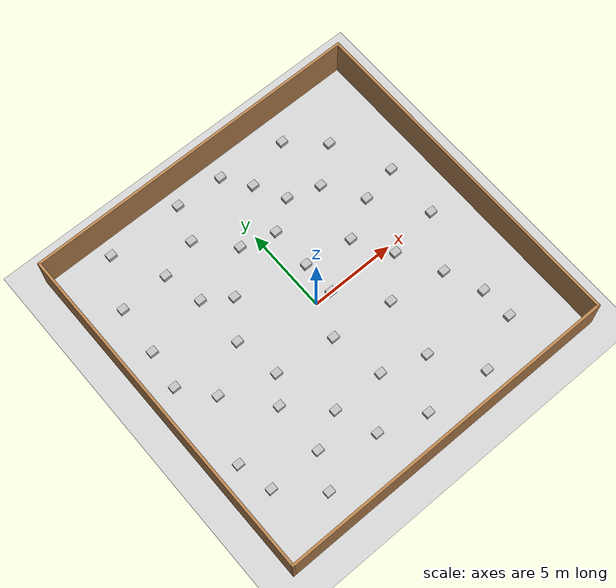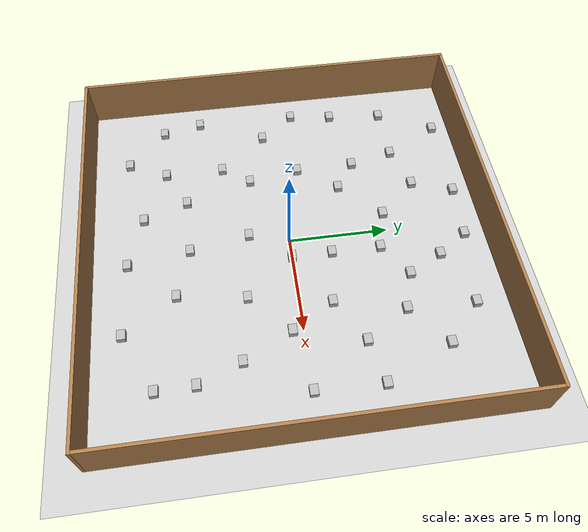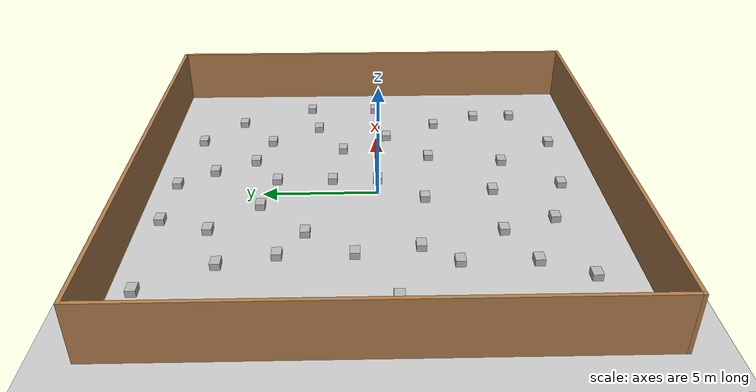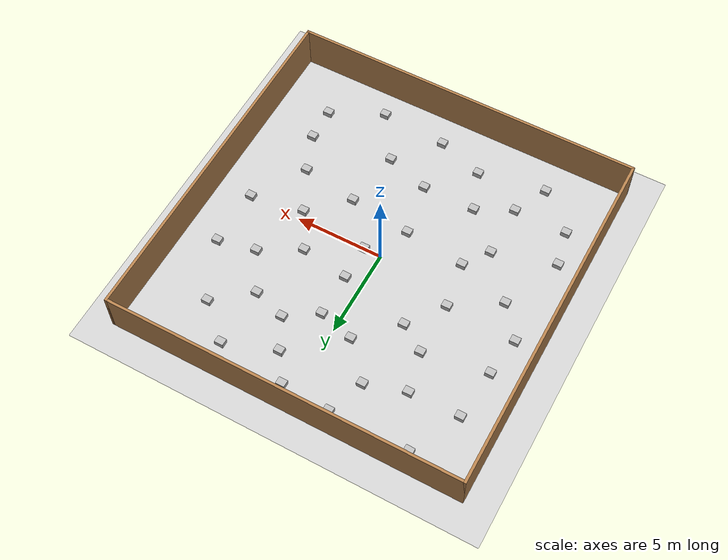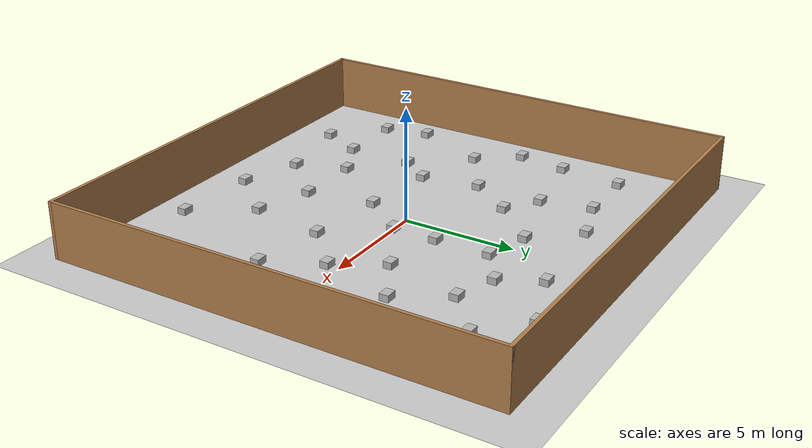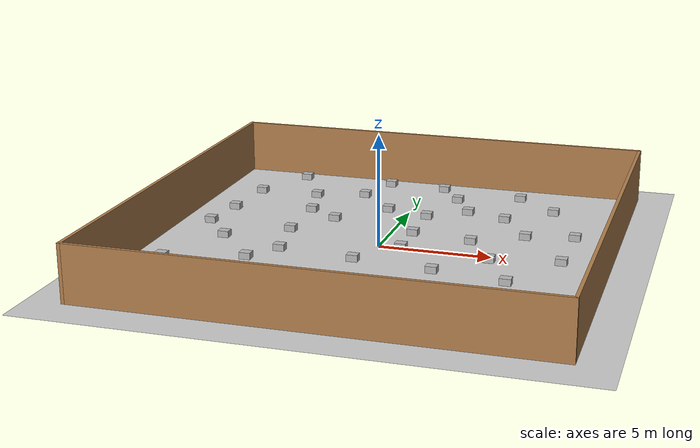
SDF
<sdf version="1.6">
 <world name="default">
  <light name="sun" type="directional">
   <pose>100 0 10 0 -0 0</pose>
   <diffuse>0.8 0.8 0.8 1</diffuse>
   <specular>0.2 0.2 0.2 1</specular>
   <attenuation>
    <range>1000</range>
    <constant>0.9</constant>
    <linear>0.01</linear>
    <quadratic>0.001</quadratic>
   </attenuation>
   <direction>-0.5 0.1 -0.9</direction>
  </light>
  <model name="ground_plane">
   <static>1</static>
   <link name="link">
    <collision name="collision">
     <geometry><plane><normal>0 0 1</normal><size>100 100</size></plane></geometry>
     <surface>
      <contact><collide_bitmask>65535</collide_bitmask></contact>
      <friction><ode><mu>100</mu><mu2>50</mu2></ode></friction>
     </surface>
    </collision>
    <visual name="visual">
     <cast_shadows>0</cast_shadows>
     <geometry><plane><normal>0 0 1</normal><size>100 100</size></plane></geometry>
     <material>
      <script><uri>file://media/materials/scripts/gazebo.material</uri><name>Gazebo/Grey</name></script>
     </material>
    </visual>
   </link>
  </model>
  <gravity>0 0 -9.8</gravity>
  <magnetic_field>6e-06 2.3e-05 -4.2e-05</magnetic_field>
  <atmosphere type="adiabatic"/>
  <physics name="default_physics" default="0" type="ode">
   <max_step_size>0.001</max_step_size>
   <real_time_factor>1</real_time_factor>
   <real_time_update_rate>2000</real_time_update_rate>
  </physics>
  <scene><ambient>0.4 0.4 0.4 1</ambient><background>0.7 0.7 0.7 1</background><shadows>1</shadows></scene>
  <audio><device>default</device></audio>
  <spherical_coordinates>
   <surface_model>EARTH_WGS84</surface_model>
   <latitude_deg>0</latitude_deg>
   <longitude_deg>0</longitude_deg>
   <elevation>0</elevation>
   <heading_deg>0</heading_deg>
  </spherical_coordinates>
  <model name="space">
   <pose>0.101286 0.054802 0 0 -0 0</pose>
   <link name="Wall_0">
    <collision name="Wall_0_Collision">
     <geometry><box><size>20 0.15 2.5</size></box></geometry>
     <pose>0 0 1.25 0 -0 0</pose>
    </collision>
    <visual name="Wall_0_Visual">
     <pose>0 0 1.25 0 -0 0</pose>
     <geometry><box><size>20 0.15 2.5</size></box></geometry>
     <material>
      <script><uri>file://media/materials/scripts/gazebo.material</uri><name>Gazebo/Wood</name></script>
      <ambient>1 1 1 1</ambient>
     </material>
     <meta><layer>0</layer></meta>
    </visual>
    <pose>0 -9.925 0 0 -0 3.14159</pose>
   </link>
   <link name="Wall_2">
    <collision name="Wall_2_Collision">
     <geometry><box><size>20 0.15 2.5</size></box></geometry>
     <pose>0 0 1.25 0 -0 0</pose>
    </collision>
    <visual name="Wall_2_Visual">
     <pose>0 0 1.25 0 -0 0</pose>
     <geometry><box><size>20 0.15 2.5</size></box></geometry>
     <material>
      <script><uri>file://media/materials/scripts/gazebo.material</uri><name>Gazebo/Wood</name></script>
      <ambient>1 1 1 1</ambient>
     </material>
     <meta><layer>0</layer></meta>
    </visual>
    <pose>-9.925 -0 0 0 -0 1.5708</pose>
   </link>
   <link name="Wall_4">
    <collision name="Wall_4_Collision">
     <geometry><box><size>20 0.15 2.5</size></box></geometry>
     <pose>0 0 1.25 0 -0 0</pose>
    </collision>
    <visual name="Wall_4_Visual">
     <pose>0 0 1.25 0 -0 0</pose>
     <geometry><box><size>20 0.15 2.5</size></box></geometry>
     <material>
      <script><uri>file://media/materials/scripts/gazebo.material</uri><name>Gazebo/Wood</name></script>
      <ambient>1 1 1 1</ambient>
     </material>
     <meta><layer>0</layer></meta>
    </visual>
    <pose>0 9.925 0 0 -0 0</pose>
   </link>
   <link name="Wall_6">
    <collision name="Wall_6_Collision">
     <geometry><box><size>20 0.15 2.5</size></box></geometry>
     <pose>0 0 1.25 0 -0 0</pose>
    </collision>
    <visual name="Wall_6_Visual">
     <pose>0 0 1.25 0 -0 0</pose>
     <geometry><box><size>20 0.15 2.5</size></box></geometry>
     <material>
      <script><uri>file://media/materials/scripts/gazebo.material</uri><name>Gazebo/Wood</name></script>
      <ambient>1 1 1 1</ambient>
     </material>
     <meta><layer>0</layer></meta>
    </visual>
    <pose>9.925 -0 0 0 -0 -1.5708</pose>
   </link>
   <static>1</static>
  </model>
  <model name="cardboard_box">
   <pose>7.11242 -6.95784 0.149 0 -0 0</pose>
   <link name="link">
    <inertial>
     <mass>2</mass>
     <inertia>
      <ixx>0.0416667</ixx>
      <ixy>0</ixy>
      <ixz>0</ixz>
      <iyy>0.0566667</iyy>
      <iyz>0</iyz>
      <izz>0.0683333</izz>
     </inertia>
    </inertial>
    <collision name="collision">
     <geometry><box><size>0.5 0.4 0.3</size></box></geometry>
     <surface>
      <friction><ode><mu>1</mu><mu2>1</mu2></ode></friction>
      <contact><ode><kp>1e+07</kp><kd>1</kd><min_depth>0.001</min_depth><max_vel>0.1</max_vel></ode></contact>
     </surface>
    </collision>
    <visual name="visual">
     <pose>0 0 -0.15 0 -0 0</pose>
     <geometry>
      <mesh><uri>model://cardboard_box/meshes/cardboard_box.dae</uri><scale>1.25932 1.00745 0.755591</scale></mesh>
     </geometry>
    </visual>
   </link>
  </model>
  <model name="cardboard_box_clone">
   <pose>7.06206 -5.07993 0.149 0 -0 0</pose>
   <link name="link">
    <inertial>
     <mass>2</mass>
     <inertia>
      <ixx>0.0416667</ixx>
      <ixy>0</ixy>
      <ixz>0</ixz>
      <iyy>0.0566667</iyy>
      <iyz>0</iyz>
      <izz>0.0683333</izz>
     </inertia>
    </inertial>
    <collision name="collision">
     <geometry><box><size>0.5 0.4 0.3</size></box></geometry>
     <surface>
      <friction><ode><mu>1</mu><mu2>1</mu2></ode></friction>
      <contact><ode><kp>1e+07</kp><kd>1</kd><min_depth>0.001</min_depth><max_vel>0.1</max_vel></ode></contact>
     </surface>
    </collision>
    <visual name="visual">
     <pose>0 0 -0.15 0 -0 0</pose>
     <geometry>
      <mesh><uri>model://cardboard_box/meshes/cardboard_box.dae</uri><scale>1.25932 1.00745 0.755591</scale></mesh>
     </geometry>
    </visual>
   </link>
  </model>
  <model name="cardboard_box_clone_0">
   <pose>3 -2.41867 0.149 0 -0 0</pose>
   <link name="link">
    <inertial>
     <mass>2</mass>
     <inertia>
      <ixx>0.0416667</ixx>
      <ixy>0</ixy>
      <ixz>0</ixz>
      <iyy>0.0566667</iyy>
      <iyz>0</iyz>
      <izz>0.0683333</izz>
     </inertia>
    </inertial>
    <collision name="collision">
     <geometry><box><size>0.5 0.4 0.3</size></box></geometry>
     <surface>
      <friction><ode><mu>1</mu><mu2>1</mu2></ode></friction>
      <contact><ode><kp>1e+07</kp><kd>1</kd><min_depth>0.001</min_depth><max_vel>0.1</max_vel></ode></contact>
     </surface>
    </collision>
    <visual name="visual">
     <pose>0 0 -0.15 0 -0 0</pose>
     <geometry>
      <mesh><uri>model://cardboard_box/meshes/cardboard_box.dae</uri><scale>1.25932 1.00745 0.755591</scale></mesh>
     </geometry>
    </visual>
   </link>
  </model>
  <model name="cardboard_box_clone_1">
   <pose>3.73661 1.58001 0.149 0 -0 0</pose>
   <link name="link">
    <inertial>
     <mass>2</mass>
     <inertia>
      <ixx>0.0416667</ixx>
      <ixy>0</ixy>
      <ixz>0</ixz>
      <iyy>0.0566667</iyy>
      <iyz>0</iyz>
      <izz>0.0683333</izz>
     </inertia>
    </inertial>
    <collision name="collision">
     <geometry><box><size>0.5 0.4 0.3</size></box></geometry>
     <surface>
      <friction><ode><mu>1</mu><mu2>1</mu2></ode></friction>
      <contact><ode><kp>1e+07</kp><kd>1</kd><min_depth>0.001</min_depth><max_vel>0.1</max_vel></ode></contact>
     </surface>
    </collision>
    <visual name="visual">
     <pose>0 0 -0.15 0 -0 0</pose>
     <geometry>
      <mesh><uri>model://cardboard_box/meshes/cardboard_box.dae</uri><scale>1.25932 1.00745 0.755591</scale></mesh>
     </geometry>
    </visual>
   </link>
  </model>
  <model name="cardboard_box_clone_2">
   <pose>-4 -1.59365 0.149 0 -0 0</pose>
   <link name="link">
    <inertial>
     <mass>2</mass>
     <inertia>
      <ixx>0.0416667</ixx>
      <ixy>0</ixy>
      <ixz>0</ixz>
      <iyy>0.0566667</iyy>
      <iyz>0</iyz>
      <izz>0.0683333</izz>
     </inertia>
    </inertial>
    <collision name="collision">
     <geometry><box><size>0.5 0.4 0.3</size></box></geometry>
     <surface>
      <friction><ode><mu>1</mu><mu2>1</mu2></ode></friction>
      <contact><ode><kp>1e+07</kp><kd>1</kd><min_depth>0.001</min_depth><max_vel>0.1</max_vel></ode></contact>
     </surface>
    </collision>
    <visual name="visual">
     <pose>0 0 -0.15 0 -0 0</pose>
     <geometry>
      <mesh><uri>model://cardboard_box/meshes/cardboard_box.dae</uri><scale>1.25932 1.00745 0.755591</scale></mesh>
     </geometry>
    </visual>
   </link>
  </model>
  <model name="cardboard_box_clone_3">
   <pose>-4.43461 1 0.149 0 -0 0</pose>
   <link name="link">
    <inertial>
     <mass>2</mass>
     <inertia>
      <ixx>0.0416667</ixx>
      <ixy>0</ixy>
      <ixz>0</ixz>
      <iyy>0.0566667</iyy>
      <iyz>0</iyz>
      <izz>0.0683333</izz>
     </inertia>
    </inertial>
    <collision name="collision">
     <geometry><box><size>0.5 0.4 0.3</size></box></geometry>
     <surface>
      <friction><ode><mu>1</mu><mu2>1</mu2></ode></friction>
      <contact><ode><kp>1e+07</kp><kd>1</kd><min_depth>0.001</min_depth><max_vel>0.1</max_vel></ode></contact>
     </surface>
    </collision>
    <visual name="visual">
     <pose>0 0 -0.15 0 -0 0</pose>
     <geometry>
      <mesh><uri>model://cardboard_box/meshes/cardboard_box.dae</uri><scale>1.25932 1.00745 0.755591</scale></mesh>
     </geometry>
    </visual>
   </link>
  </model>
  <model name="cardboard_box_clone_4">
   <pose>-4.46357 4 0.149 0 -0 0</pose>
   <link name="link">
    <inertial>
     <mass>2</mass>
     <inertia>
      <ixx>0.0416667</ixx>
      <ixy>0</ixy>
      <ixz>0</ixz>
      <iyy>0.0566667</iyy>
      <iyz>0</iyz>
      <izz>0.0683333</izz>
     </inertia>
    </inertial>
    <collision name="collision">
     <geometry><box><size>0.5 0.4 0.3</size></box></geometry>
     <surface>
      <friction><ode><mu>1</mu><mu2>1</mu2></ode></friction>
      <contact><ode><kp>1e+07</kp><kd>1</kd><min_depth>0.001</min_depth><max_vel>0.1</max_vel></ode></contact>
     </surface>
    </collision>
    <visual name="visual">
     <pose>0 0 -0.15 0 -0 0</pose>
     <geometry>
      <mesh><uri>model://cardboard_box/meshes/cardboard_box.dae</uri><scale>1.25932 1.00745 0.755591</scale></mesh>
     </geometry>
    </visual>
   </link>
  </model>
  <model name="cardboard_box_clone_5">
   <pose>4.561 5 0.149 0 -0 0</pose>
   <link name="link">
    <inertial>
     <mass>2</mass>
     <inertia>
      <ixx>0.0416667</ixx>
      <ixy>0</ixy>
      <ixz>0</ixz>
      <iyy>0.0566667</iyy>
      <iyz>0</iyz>
      <izz>0.0683333</izz>
     </inertia>
    </inertial>
    <collision name="collision">
     <geometry><box><size>0.5 0.4 0.3</size></box></geometry>
     <surface>
      <friction><ode><mu>1</mu><mu2>1</mu2></ode></friction>
      <contact><ode><kp>1e+07</kp><kd>1</kd><min_depth>0.001</min_depth><max_vel>0.1</max_vel></ode></contact>
     </surface>
    </collision>
    <visual name="visual">
     <pose>0 0 -0.15 0 -0 0</pose>
     <geometry>
      <mesh><uri>model://cardboard_box/meshes/cardboard_box.dae</uri><scale>1.25932 1.00745 0.755591</scale></mesh>
     </geometry>
    </visual>
   </link>
  </model>
  <model name="cardboard_box_clone_6">
   <pose>-3 3 0.149 0 -0 0</pose>
   <link name="link">
    <inertial>
     <mass>2</mass>
     <inertia>
      <ixx>0.0416667</ixx>
      <ixy>0</ixy>
      <ixz>0</ixz>
      <iyy>0.0566667</iyy>
      <iyz>0</iyz>
      <izz>0.0683333</izz>
     </inertia>
    </inertial>
    <collision name="collision">
     <geometry><box><size>0.5 0.4 0.3</size></box></geometry>
     <surface>
      <friction><ode><mu>1</mu><mu2>1</mu2></ode></friction>
      <contact><ode><kp>1e+07</kp><kd>1</kd><min_depth>0.001</min_depth><max_vel>0.1</max_vel></ode></contact>
     </surface>
    </collision>
    <visual name="visual">
     <pose>0 0 -0.15 0 -0 0</pose>
     <geometry>
      <mesh><uri>model://cardboard_box/meshes/cardboard_box.dae</uri><scale>1.25932 1.00745 0.755591</scale></mesh>
     </geometry>
    </visual>
   </link>
  </model>
  <model name="cardboard_box_clone_7">
   <pose>1 4.45869 0.149 0 -0 0</pose>
   <link name="link">
    <inertial>
     <mass>2</mass>
     <inertia>
      <ixx>0.0416667</ixx>
      <ixy>0</ixy>
      <ixz>0</ixz>
      <iyy>0.0566667</iyy>
      <iyz>0</iyz>
      <izz>0.0683333</izz>
     </inertia>
    </inertial>
    <collision name="collision">
     <geometry><box><size>0.5 0.4 0.3</size></box></geometry>
     <surface>
      <friction><ode><mu>1</mu><mu2>1</mu2></ode></friction>
      <contact><ode><kp>1e+07</kp><kd>1</kd><min_depth>0.001</min_depth><max_vel>0.1</max_vel></ode></contact>
     </surface>
    </collision>
    <visual name="visual">
     <pose>0 0 -0.15 0 -0 0</pose>
     <geometry>
      <mesh><uri>model://cardboard_box/meshes/cardboard_box.dae</uri><scale>1.25932 1.00745 0.755591</scale></mesh>
     </geometry>
    </visual>
   </link>
  </model>
  <model name="cardboard_box_clone_8">
   <pose>1 2 0.149 0 -0 0</pose>
   <link name="link">
    <inertial>
     <mass>2</mass>
     <inertia>
      <ixx>0.0416667</ixx>
      <ixy>0</ixy>
      <ixz>0</ixz>
      <iyy>0.0566667</iyy>
      <iyz>0</iyz>
      <izz>0.0683333</izz>
     </inertia>
    </inertial>
    <collision name="collision">
     <geometry><box><size>0.5 0.4 0.3</size></box></geometry>
     <surface>
      <friction><ode><mu>1</mu><mu2>1</mu2></ode></friction>
      <contact><ode><kp>1e+07</kp><kd>1</kd><min_depth>0.001</min_depth><max_vel>0.1</max_vel></ode></contact>
     </surface>
    </collision>
    <visual name="visual">
     <pose>0 0 -0.15 0 -0 0</pose>
     <geometry>
      <mesh><uri>model://cardboard_box/meshes/cardboard_box.dae</uri><scale>1.25932 1.00745 0.755591</scale></mesh>
     </geometry>
    </visual>
   </link>
  </model>
  <model name="cardboard_box_clone_9">
   <pose>-0.550715 -2 0.149 0 -0 0</pose>
   <link name="link">
    <inertial>
     <mass>2</mass>
     <inertia>
      <ixx>0.0416667</ixx>
      <ixy>0</ixy>
      <ixz>0</ixz>
      <iyy>0.0566667</iyy>
      <iyz>0</iyz>
      <izz>0.0683333</izz>
     </inertia>
    </inertial>
    <collision name="collision">
     <geometry><box><size>0.5 0.4 0.3</size></box></geometry>
     <surface>
      <friction><ode><mu>1</mu><mu2>1</mu2></ode></friction>
      <contact><ode><kp>1e+07</kp><kd>1</kd><min_depth>0.001</min_depth><max_vel>0.1</max_vel></ode></contact>
     </surface>
    </collision>
    <visual name="visual">
     <pose>0 0 -0.15 0 -0 0</pose>
     <geometry>
      <mesh><uri>model://cardboard_box/meshes/cardboard_box.dae</uri><scale>1.25932 1.00745 0.755591</scale></mesh>
     </geometry>
    </visual>
   </link>
  </model>
  <model name="cardboard_box_clone_10">
   <pose>-5 -3 0.149 0 -0 0</pose>
   <link name="link">
    <inertial>
     <mass>2</mass>
     <inertia>
      <ixx>0.0416667</ixx>
      <ixy>0</ixy>
      <ixz>0</ixz>
      <iyy>0.0566667</iyy>
      <iyz>0</iyz>
      <izz>0.0683333</izz>
     </inertia>
    </inertial>
    <collision name="collision">
     <geometry><box><size>0.5 0.4 0.3</size></box></geometry>
     <surface>
      <friction><ode><mu>1</mu><mu2>1</mu2></ode></friction>
      <contact><ode><kp>1e+07</kp><kd>1</kd><min_depth>0.001</min_depth><max_vel>0.1</max_vel></ode></contact>
     </surface>
    </collision>
    <visual name="visual">
     <pose>0 0 -0.15 0 -0 0</pose>
     <geometry>
      <mesh><uri>model://cardboard_box/meshes/cardboard_box.dae</uri><scale>1.25932 1.00745 0.755591</scale></mesh>
     </geometry>
    </visual>
   </link>
  </model>
  <model name="cardboard_box_clone_11">
   <pose>-5 -6 0.149 0 -0 0</pose>
   <link name="link">
    <inertial>
     <mass>2</mass>
     <inertia>
      <ixx>0.0416667</ixx>
      <ixy>0</ixy>
      <ixz>0</ixz>
      <iyy>0.0566667</iyy>
      <iyz>0</iyz>
      <izz>0.0683333</izz>
     </inertia>
    </inertial>
    <collision name="collision">
     <geometry><box><size>0.5 0.4 0.3</size></box></geometry>
     <surface>
      <friction><ode><mu>1</mu><mu2>1</mu2></ode></friction>
      <contact><ode><kp>1e+07</kp><kd>1</kd><min_depth>0.001</min_depth><max_vel>0.1</max_vel></ode></contact>
     </surface>
    </collision>
    <visual name="visual">
     <pose>0 0 -0.15 0 -0 0</pose>
     <geometry>
      <mesh><uri>model://cardboard_box/meshes/cardboard_box.dae</uri><scale>1.25932 1.00745 0.755591</scale></mesh>
     </geometry>
    </visual>
   </link>
  </model>
  <model name="cardboard_box_clone_12">
   <pose>0 -5 0.149 0 -0 0</pose>
   <link name="link">
    <inertial>
     <mass>2</mass>
     <inertia>
      <ixx>0.0416667</ixx>
      <ixy>0</ixy>
      <ixz>0</ixz>
      <iyy>0.0566667</iyy>
      <iyz>0</iyz>
      <izz>0.0683333</izz>
     </inertia>
    </inertial>
    <collision name="collision">
     <geometry><box><size>0.5 0.4 0.3</size></box></geometry>
     <surface>
      <friction><ode><mu>1</mu><mu2>1</mu2></ode></friction>
      <contact><ode><kp>1e+07</kp><kd>1</kd><min_depth>0.001</min_depth><max_vel>0.1</max_vel></ode></contact>
     </surface>
    </collision>
    <visual name="visual">
     <pose>0 0 -0.15 0 -0 0</pose>
     <geometry>
      <mesh><uri>model://cardboard_box/meshes/cardboard_box.dae</uri><scale>1.25932 1.00745 0.755591</scale></mesh>
     </geometry>
    </visual>
   </link>
  </model>
  <model name="cardboard_box_clone_13">
   <pose>-3 -5 0.149 0 -0 0</pose>
   <link name="link">
    <inertial>
     <mass>2</mass>
     <inertia>
      <ixx>0.0416667</ixx>
      <ixy>0</ixy>
      <ixz>0</ixz>
      <iyy>0.0566667</iyy>
      <iyz>0</iyz>
      <izz>0.0683333</izz>
     </inertia>
    </inertial>
    <collision name="collision">
     <geometry><box><size>0.5 0.4 0.3</size></box></geometry>
     <surface>
      <friction><ode><mu>1</mu><mu2>1</mu2></ode></friction>
      <contact><ode><kp>1e+07</kp><kd>1</kd><min_depth>0.001</min_depth><max_vel>0.1</max_vel></ode></contact>
     </surface>
    </collision>
    <visual name="visual">
     <pose>0 0 -0.15 0 -0 0</pose>
     <geometry>
      <mesh><uri>model://cardboard_box/meshes/cardboard_box.dae</uri><scale>1.25932 1.00745 0.755591</scale></mesh>
     </geometry>
    </visual>
   </link>
  </model>
  <model name="cardboard_box_clone_14">
   <pose>-7 -0.598873 0.149 0 -0 0</pose>
   <link name="link">
    <inertial>
     <mass>2</mass>
     <inertia>
      <ixx>0.0416667</ixx>
      <ixy>0</ixy>
      <ixz>0</ixz>
      <iyy>0.0566667</iyy>
      <iyz>0</iyz>
      <izz>0.0683333</izz>
     </inertia>
    </inertial>
    <collision name="collision">
     <geometry><box><size>0.5 0.4 0.3</size></box></geometry>
     <surface>
      <friction><ode><mu>1</mu><mu2>1</mu2></ode></friction>
      <contact><ode><kp>1e+07</kp><kd>1</kd><min_depth>0.001</min_depth><max_vel>0.1</max_vel></ode></contact>
     </surface>
    </collision>
    <visual name="visual">
     <pose>0 0 -0.15 0 -0 0</pose>
     <geometry>
      <mesh><uri>model://cardboard_box/meshes/cardboard_box.dae</uri><scale>1.25932 1.00745 0.755591</scale></mesh>
     </geometry>
    </visual>
   </link>
  </model>
  <model name="cardboard_box_clone_15">
   <pose>-8.44165 -4 0.149 0 -0 0</pose>
   <link name="link">
    <inertial>
     <mass>2</mass>
     <inertia>
      <ixx>0.0416667</ixx>
      <ixy>0</ixy>
      <ixz>0</ixz>
      <iyy>0.0566667</iyy>
      <iyz>0</iyz>
      <izz>0.0683333</izz>
     </inertia>
    </inertial>
    <collision name="collision">
     <geometry><box><size>0.5 0.4 0.3</size></box></geometry>
     <surface>
      <friction><ode><mu>1</mu><mu2>1</mu2></ode></friction>
      <contact><ode><kp>1e+07</kp><kd>1</kd><min_depth>0.001</min_depth><max_vel>0.1</max_vel></ode></contact>
     </surface>
    </collision>
    <visual name="visual">
     <pose>0 0 -0.15 0 -0 0</pose>
     <geometry>
      <mesh><uri>model://cardboard_box/meshes/cardboard_box.dae</uri><scale>1.25932 1.00745 0.755591</scale></mesh>
     </geometry>
    </visual>
   </link>
  </model>
  <model name="cardboard_box_clone_16">
   <pose>-8 -6 0.149 0 -0 0</pose>
   <link name="link">
    <inertial>
     <mass>2</mass>
     <inertia>
      <ixx>0.0416667</ixx>
      <ixy>0</ixy>
      <ixz>0</ixz>
      <iyy>0.0566667</iyy>
      <iyz>0</iyz>
      <izz>0.0683333</izz>
     </inertia>
    </inertial>
    <collision name="collision">
     <geometry><box><size>0.5 0.4 0.3</size></box></geometry>
     <surface>
      <friction><ode><mu>1</mu><mu2>1</mu2></ode></friction>
      <contact><ode><kp>1e+07</kp><kd>1</kd><min_depth>0.001</min_depth><max_vel>0.1</max_vel></ode></contact>
     </surface>
    </collision>
    <visual name="visual">
     <pose>0 0 -0.15 0 -0 0</pose>
     <geometry>
      <mesh><uri>model://cardboard_box/meshes/cardboard_box.dae</uri><scale>1.25932 1.00745 0.755591</scale></mesh>
     </geometry>
    </visual>
   </link>
  </model>
  <model name="cardboard_box_clone_17">
   <pose>8 0 0.149 0 -0 0</pose>
   <link name="link">
    <inertial>
     <mass>2</mass>
     <inertia>
      <ixx>0.0416667</ixx>
      <ixy>0</ixy>
      <ixz>0</ixz>
      <iyy>0.0566667</iyy>
      <iyz>0</iyz>
      <izz>0.0683333</izz>
     </inertia>
    </inertial>
    <collision name="collision">
     <geometry><box><size>0.5 0.4 0.3</size></box></geometry>
     <surface>
      <friction><ode><mu>1</mu><mu2>1</mu2></ode></friction>
      <contact><ode><kp>1e+07</kp><kd>1</kd><min_depth>0.001</min_depth><max_vel>0.1</max_vel></ode></contact>
     </surface>
    </collision>
    <visual name="visual">
     <pose>0 0 -0.15 0 -0 0</pose>
     <geometry>
      <mesh><uri>model://cardboard_box/meshes/cardboard_box.dae</uri><scale>1.25932 1.00745 0.755591</scale></mesh>
     </geometry>
    </visual>
   </link>
  </model>
  <model name="cardboard_box_clone_18">
   <pose>8.07233 3.26964 0.149 0 -0 0</pose>
   <link name="link">
    <inertial>
     <mass>2</mass>
     <inertia>
      <ixx>0.0416667</ixx>
      <ixy>0</ixy>
      <ixz>0</ixz>
      <iyy>0.0566667</iyy>
      <iyz>0</iyz>
      <izz>0.0683333</izz>
     </inertia>
    </inertial>
    <collision name="collision">
     <geometry><box><size>0.5 0.4 0.3</size></box></geometry>
     <surface>
      <friction><ode><mu>1</mu><mu2>1</mu2></ode></friction>
      <contact><ode><kp>1e+07</kp><kd>1</kd><min_depth>0.001</min_depth><max_vel>0.1</max_vel></ode></contact>
     </surface>
    </collision>
    <visual name="visual">
     <pose>0 0 -0.15 0 -0 0</pose>
     <geometry>
      <mesh><uri>model://cardboard_box/meshes/cardboard_box.dae</uri><scale>1.25932 1.00745 0.755591</scale></mesh>
     </geometry>
    </visual>
   </link>
  </model>
  <model name="cardboard_box_clone_19">
   <pose>5 -0.51973 0.149 0 -0 0</pose>
   <link name="link">
    <inertial>
     <mass>2</mass>
     <inertia>
      <ixx>0.0416667</ixx>
      <ixy>0</ixy>
      <ixz>0</ixz>
      <iyy>0.0566667</iyy>
      <iyz>0</iyz>
      <izz>0.0683333</izz>
     </inertia>
    </inertial>
    <collision name="collision">
     <geometry><box><size>0.5 0.4 0.3</size></box></geometry>
     <surface>
      <friction><ode><mu>1</mu><mu2>1</mu2></ode></friction>
      <contact><ode><kp>1e+07</kp><kd>1</kd><min_depth>0.001</min_depth><max_vel>0.1</max_vel></ode></contact>
     </surface>
    </collision>
    <visual name="visual">
     <pose>0 0 -0.15 0 -0 0</pose>
     <geometry>
      <mesh><uri>model://cardboard_box/meshes/cardboard_box.dae</uri><scale>1.25932 1.00745 0.755591</scale></mesh>
     </geometry>
    </visual>
   </link>
  </model>
  <model name="cardboard_box_clone_20">
   <pose>1 0 0.149 0 -0 0</pose>
   <link name="link">
    <inertial>
     <mass>2</mass>
     <inertia>
      <ixx>0.0416667</ixx>
      <ixy>0</ixy>
      <ixz>0</ixz>
      <iyy>0.0566667</iyy>
      <iyz>0</iyz>
      <izz>0.0683333</izz>
     </inertia>
    </inertial>
    <collision name="collision">
     <geometry><box><size>0.5 0.4 0.3</size></box></geometry>
     <surface>
      <friction><ode><mu>1</mu><mu2>1</mu2></ode></friction>
      <contact><ode><kp>1e+07</kp><kd>1</kd><min_depth>0.001</min_depth><max_vel>0.1</max_vel></ode></contact>
     </surface>
    </collision>
    <visual name="visual">
     <pose>0 0 -0.15 0 -0 0</pose>
     <geometry>
      <mesh><uri>model://cardboard_box/meshes/cardboard_box.dae</uri><scale>1.25932 1.00745 0.755591</scale></mesh>
     </geometry>
    </visual>
   </link>
  </model>
  <model name="cardboard_box_clone_21">
   <pose>-1 5 0.149 0 -0 0</pose>
   <link name="link">
    <inertial>
     <mass>2</mass>
     <inertia>
      <ixx>0.0416667</ixx>
      <ixy>0</ixy>
      <ixz>0</ixz>
      <iyy>0.0566667</iyy>
      <iyz>0</iyz>
      <izz>0.0683333</izz>
     </inertia>
    </inertial>
    <collision name="collision">
     <geometry><box><size>0.5 0.4 0.3</size></box></geometry>
     <surface>
      <friction><ode><mu>1</mu><mu2>1</mu2></ode></friction>
      <contact><ode><kp>1e+07</kp><kd>1</kd><min_depth>0.001</min_depth><max_vel>0.1</max_vel></ode></contact>
     </surface>
    </collision>
    <visual name="visual">
     <pose>0 0 -0.15 0 -0 0</pose>
     <geometry>
      <mesh><uri>model://cardboard_box/meshes/cardboard_box.dae</uri><scale>1.25932 1.00745 0.755591</scale></mesh>
     </geometry>
    </visual>
   </link>
  </model>
  <model name="cardboard_box_clone_22">
   <pose>-8.08219 3.38181 0.149 0 -0 0</pose>
   <link name="link">
    <inertial>
     <mass>2</mass>
     <inertia>
      <ixx>0.0416667</ixx>
      <ixy>0</ixy>
      <ixz>0</ixz>
      <iyy>0.0566667</iyy>
      <iyz>0</iyz>
      <izz>0.0683333</izz>
     </inertia>
    </inertial>
    <collision name="collision">
     <geometry><box><size>0.5 0.4 0.3</size></box></geometry>
     <surface>
      <friction><ode><mu>1</mu><mu2>1</mu2></ode></friction>
      <contact><ode><kp>1e+07</kp><kd>1</kd><min_depth>0.001</min_depth><max_vel>0.1</max_vel></ode></contact>
     </surface>
    </collision>
    <visual name="visual">
     <pose>0 0 -0.15 0 -0 0</pose>
     <geometry>
      <mesh><uri>model://cardboard_box/meshes/cardboard_box.dae</uri><scale>1.25932 1.00745 0.755591</scale></mesh>
     </geometry>
    </visual>
   </link>
  </model>
  <model name="cardboard_box_clone_23">
   <pose>-7.81227 6.18665 0.149 0 -0 0</pose>
   <link name="link">
    <inertial>
     <mass>2</mass>
     <inertia>
      <ixx>0.0416667</ixx>
      <ixy>0</ixy>
      <ixz>0</ixz>
      <iyy>0.0566667</iyy>
      <iyz>0</iyz>
      <izz>0.0683333</izz>
     </inertia>
    </inertial>
    <collision name="collision">
     <geometry><box><size>0.5 0.4 0.3</size></box></geometry>
     <surface>
      <friction><ode><mu>1</mu><mu2>1</mu2></ode></friction>
      <contact><ode><kp>1e+07</kp><kd>1</kd><min_depth>0.001</min_depth><max_vel>0.1</max_vel></ode></contact>
     </surface>
    </collision>
    <visual name="visual">
     <pose>0 0 -0.15 0 -0 0</pose>
     <geometry>
      <mesh><uri>model://cardboard_box/meshes/cardboard_box.dae</uri><scale>1.25932 1.00745 0.755591</scale></mesh>
     </geometry>
    </visual>
   </link>
  </model>
  <model name="cardboard_box_clone_24">
   <pose>1.80361 7.33195 0.149 0 -0 0</pose>
   <link name="link">
    <inertial>
     <mass>2</mass>
     <inertia>
      <ixx>0.0416667</ixx>
      <ixy>0</ixy>
      <ixz>0</ixz>
      <iyy>0.0566667</iyy>
      <iyz>0</iyz>
      <izz>0.0683333</izz>
     </inertia>
    </inertial>
    <collision name="collision">
     <geometry><box><size>0.5 0.4 0.3</size></box></geometry>
     <surface>
      <friction><ode><mu>1</mu><mu2>1</mu2></ode></friction>
      <contact><ode><kp>1e+07</kp><kd>1</kd><min_depth>0.001</min_depth><max_vel>0.1</max_vel></ode></contact>
     </surface>
    </collision>
    <visual name="visual">
     <pose>0 0 -0.15 0 -0 0</pose>
     <geometry>
      <mesh><uri>model://cardboard_box/meshes/cardboard_box.dae</uri><scale>1.25932 1.00745 0.755591</scale></mesh>
     </geometry>
    </visual>
   </link>
  </model>
  <model name="cardboard_box_clone_25">
   <pose>-4.97768 6.24623 0.149 0 -0 0</pose>
   <link name="link">
    <inertial>
     <mass>2</mass>
     <inertia>
      <ixx>0.0416667</ixx>
      <ixy>0</ixy>
      <ixz>0</ixz>
      <iyy>0.0566667</iyy>
      <iyz>0</iyz>
      <izz>0.0683333</izz>
     </inertia>
    </inertial>
    <collision name="collision">
     <geometry><box><size>0.5 0.4 0.3</size></box></geometry>
     <surface>
      <friction><ode><mu>1</mu><mu2>1</mu2></ode></friction>
      <contact><ode><kp>1e+07</kp><kd>1</kd><min_depth>0.001</min_depth><max_vel>0.1</max_vel></ode></contact>
     </surface>
    </collision>
    <visual name="visual">
     <pose>0 0 -0.15 0 -0 0</pose>
     <geometry>
      <mesh><uri>model://cardboard_box/meshes/cardboard_box.dae</uri><scale>1.25932 1.00745 0.755591</scale></mesh>
     </geometry>
    </visual>
   </link>
  </model>
  <model name="cardboard_box_clone_26">
   <pose>-2 9 0.149 0 -0 0</pose>
   <link name="link">
    <inertial>
     <mass>2</mass>
     <inertia>
      <ixx>0.0416667</ixx>
      <ixy>0</ixy>
      <ixz>0</ixz>
      <iyy>0.0566667</iyy>
      <iyz>0</iyz>
      <izz>0.0683333</izz>
     </inertia>
    </inertial>
    <collision name="collision">
     <geometry><box><size>0.5 0.4 0.3</size></box></geometry>
     <surface>
      <friction><ode><mu>1</mu><mu2>1</mu2></ode></friction>
      <contact><ode><kp>1e+07</kp><kd>1</kd><min_depth>0.001</min_depth><max_vel>0.1</max_vel></ode></contact>
     </surface>
    </collision>
    <visual name="visual">
     <pose>0 0 -0.15 0 -0 0</pose>
     <geometry>
      <mesh><uri>model://cardboard_box/meshes/cardboard_box.dae</uri><scale>1.25932 1.00745 0.755591</scale></mesh>
     </geometry>
    </visual>
   </link>
  </model>
  <model name="cardboard_box_clone_27">
   <pose>-2.74208 6.92671 0.149 0 -0 0</pose>
   <link name="link">
    <inertial>
     <mass>2</mass>
     <inertia>
      <ixx>0.0416667</ixx>
      <ixy>0</ixy>
      <ixz>0</ixz>
      <iyy>0.0566667</iyy>
      <iyz>0</iyz>
      <izz>0.0683333</izz>
     </inertia>
    </inertial>
    <collision name="collision">
     <geometry><box><size>0.5 0.4 0.3</size></box></geometry>
     <surface>
      <friction><ode><mu>1</mu><mu2>1</mu2></ode></friction>
      <contact><ode><kp>1e+07</kp><kd>1</kd><min_depth>0.001</min_depth><max_vel>0.1</max_vel></ode></contact>
     </surface>
    </collision>
    <visual name="visual">
     <pose>0 0 -0.15 0 -0 0</pose>
     <geometry>
      <mesh><uri>model://cardboard_box/meshes/cardboard_box.dae</uri><scale>1.25932 1.00745 0.755591</scale></mesh>
     </geometry>
    </visual>
   </link>
  </model>
  <model name="cardboard_box_clone_28">
   <pose>6.55771 6.61838 0.149 0 -0 0</pose>
   <link name="link">
    <inertial>
     <mass>2</mass>
     <inertia>
      <ixx>0.0416667</ixx>
      <ixy>0</ixy>
      <ixz>0</ixz>
      <iyy>0.0566667</iyy>
      <iyz>0</iyz>
      <izz>0.0683333</izz>
     </inertia>
    </inertial>
    <collision name="collision">
     <geometry><box><size>0.5 0.4 0.3</size></box></geometry>
     <surface>
      <friction><ode><mu>1</mu><mu2>1</mu2></ode></friction>
      <contact><ode><kp>1e+07</kp><kd>1</kd><min_depth>0.001</min_depth><max_vel>0.1</max_vel></ode></contact>
     </surface>
    </collision>
    <visual name="visual">
     <pose>0 0 -0.15 0 -0 0</pose>
     <geometry>
      <mesh><uri>model://cardboard_box/meshes/cardboard_box.dae</uri><scale>1.25932 1.00745 0.755591</scale></mesh>
     </geometry>
    </visual>
   </link>
  </model>
  <model name="cardboard_box_clone_29">
   <pose>4.6622 8.34822 0.149 0 -0 0</pose>
   <link name="link">
    <inertial>
     <mass>2</mass>
     <inertia>
      <ixx>0.0416667</ixx>
      <ixy>0</ixy>
      <ixz>0</ixz>
      <iyy>0.0566667</iyy>
      <iyz>0</iyz>
      <izz>0.0683333</izz>
     </inertia>
    </inertial>
    <collision name="collision">
     <geometry><box><size>0.5 0.4 0.3</size></box></geometry>
     <surface>
      <friction><ode><mu>1</mu><mu2>1</mu2></ode></friction>
      <contact><ode><kp>1e+07</kp><kd>1</kd><min_depth>0.001</min_depth><max_vel>0.1</max_vel></ode></contact>
     </surface>
    </collision>
    <visual name="visual">
     <pose>0 0 -0.15 0 -0 0</pose>
     <geometry>
      <mesh><uri>model://cardboard_box/meshes/cardboard_box.dae</uri><scale>1.25932 1.00745 0.755591</scale></mesh>
     </geometry>
    </visual>
   </link>
  </model>
  <model name="cardboard_box_clone_30">
   <pose>0.76738 8.83924 0.149 0 -0 0</pose>
   <link name="link">
    <inertial>
     <mass>2</mass>
     <inertia>
      <ixx>0.0416667</ixx>
      <ixy>0</ixy>
      <ixz>0</ixz>
      <iyy>0.0566667</iyy>
      <iyz>0</iyz>
      <izz>0.0683333</izz>
     </inertia>
    </inertial>
    <collision name="collision">
     <geometry><box><size>0.5 0.4 0.3</size></box></geometry>
     <surface>
      <friction><ode><mu>1</mu><mu2>1</mu2></ode></friction>
      <contact><ode><kp>1e+07</kp><kd>1</kd><min_depth>0.001</min_depth><max_vel>0.1</max_vel></ode></contact>
     </surface>
    </collision>
    <visual name="visual">
     <pose>0 0 -0.15 0 -0 0</pose>
     <geometry>
      <mesh><uri>model://cardboard_box/meshes/cardboard_box.dae</uri><scale>1.25932 1.00745 0.755591</scale></mesh>
     </geometry>
    </visual>
   </link>
  </model>
  <model name="cardboard_box_clone_31">
   <pose>0.465831 -8.1079 0.149 0 -0 0</pose>
   <link name="link">
    <inertial>
     <mass>2</mass>
     <inertia>
      <ixx>0.0416667</ixx>
      <ixy>0</ixy>
      <ixz>0</ixz>
      <iyy>0.0566667</iyy>
      <iyz>0</iyz>
      <izz>0.0683333</izz>
     </inertia>
    </inertial>
    <collision name="collision">
     <geometry><box><size>0.5 0.4 0.3</size></box></geometry>
     <surface>
      <friction><ode><mu>1</mu><mu2>1</mu2></ode></friction>
      <contact><ode><kp>1e+07</kp><kd>1</kd><min_depth>0.001</min_depth><max_vel>0.1</max_vel></ode></contact>
     </surface>
    </collision>
    <visual name="visual">
     <pose>0 0 -0.15 0 -0 0</pose>
     <geometry>
      <mesh><uri>model://cardboard_box/meshes/cardboard_box.dae</uri><scale>1.25932 1.00745 0.755591</scale></mesh>
     </geometry>
    </visual>
   </link>
  </model>
  <model name="cardboard_box_clone_32">
   <pose>2.48729 -5.78194 0.149 0 -0 0</pose>
   <link name="link">
    <inertial>
     <mass>2</mass>
     <inertia>
      <ixx>0.0416667</ixx>
      <ixy>0</ixy>
      <ixz>0</ixz>
      <iyy>0.0566667</iyy>
      <iyz>0</iyz>
      <izz>0.0683333</izz>
     </inertia>
    </inertial>
    <collision name="collision">
     <geometry><box><size>0.5 0.4 0.3</size></box></geometry>
     <surface>
      <friction><ode><mu>1</mu><mu2>1</mu2></ode></friction>
      <contact><ode><kp>1e+07</kp><kd>1</kd><min_depth>0.001</min_depth><max_vel>0.1</max_vel></ode></contact>
     </surface>
    </collision>
    <visual name="visual">
     <pose>0 0 -0.15 0 -0 0</pose>
     <geometry>
      <mesh><uri>model://cardboard_box/meshes/cardboard_box.dae</uri><scale>1.25932 1.00745 0.755591</scale></mesh>
     </geometry>
    </visual>
   </link>
  </model>
  <model name="cardboard_box_clone_33">
   <pose>6.21832 -2.94552 0.149 0 -0 0</pose>
   <link name="link">
    <inertial>
     <mass>2</mass>
     <inertia>
      <ixx>0.0416667</ixx>
      <ixy>0</ixy>
      <ixz>0</ixz>
      <iyy>0.0566667</iyy>
      <iyz>0</iyz>
      <izz>0.0683333</izz>
     </inertia>
    </inertial>
    <collision name="collision">
     <geometry><box><size>0.5 0.4 0.3</size></box></geometry>
     <surface>
      <friction><ode><mu>1</mu><mu2>1</mu2></ode></friction>
      <contact><ode><kp>1e+07</kp><kd>1</kd><min_depth>0.001</min_depth><max_vel>0.1</max_vel></ode></contact>
     </surface>
    </collision>
    <visual name="visual">
     <pose>0 0 -0.15 0 -0 0</pose>
     <geometry>
      <mesh><uri>model://cardboard_box/meshes/cardboard_box.dae</uri><scale>1.25932 1.00745 0.755591</scale></mesh>
     </geometry>
    </visual>
   </link>
  </model>
  <model name="cardboard_box_clone_34">
   <pose>-5.92964 -7.93741 0.149 0 -0 0</pose>
   <link name="link">
    <inertial>
     <mass>2</mass>
     <inertia>
      <ixx>0.0416667</ixx>
      <ixy>0</ixy>
      <ixz>0</ixz>
      <iyy>0.0566667</iyy>
      <iyz>0</iyz>
      <izz>0.0683333</izz>
     </inertia>
    </inertial>
    <collision name="collision">
     <geometry><box><size>0.5 0.4 0.3</size></box></geometry>
     <surface>
      <friction><ode><mu>1</mu><mu2>1</mu2></ode></friction>
      <contact><ode><kp>1e+07</kp><kd>1</kd><min_depth>0.001</min_depth><max_vel>0.1</max_vel></ode></contact>
     </surface>
    </collision>
    <visual name="visual">
     <pose>0 0 -0.15 0 -0 0</pose>
     <geometry>
      <mesh><uri>model://cardboard_box/meshes/cardboard_box.dae</uri><scale>1.25932 1.00745 0.755591</scale></mesh>
     </geometry>
    </visual>
   </link>
  </model>
  <model name="cardboard_box_clone_35">
   <pose>-8.38975 1.16951 0.149 0 -0 0</pose>
   <link name="link">
    <inertial>
     <mass>2</mass>
     <inertia>
      <ixx>0.0416667</ixx>
      <ixy>0</ixy>
      <ixz>0</ixz>
      <iyy>0.0566667</iyy>
      <iyz>0</iyz>
      <izz>0.0683333</izz>
     </inertia>
    </inertial>
    <collision name="collision">
     <geometry><box><size>0.5 0.4 0.3</size></box></geometry>
     <surface>
      <friction><ode><mu>1</mu><mu2>1</mu2></ode></friction>
      <contact><ode><kp>1e+07</kp><kd>1</kd><min_depth>0.001</min_depth><max_vel>0.1</max_vel></ode></contact>
     </surface>
    </collision>
    <visual name="visual">
     <pose>0 0 -0.15 0 -0 0</pose>
     <geometry>
      <mesh><uri>model://cardboard_box/meshes/cardboard_box.dae</uri><scale>1.25932 1.00745 0.755591</scale></mesh>
     </geometry>
    </visual>
   </link>
  </model>
  <model name="cardboard_box_clone_36">
   <pose>-6.45284 9 0.149 0 -0 0</pose>
   <link name="link">
    <inertial>
     <mass>2</mass>
     <inertia>
      <ixx>0.0416667</ixx>
      <ixy>0</ixy>
      <ixz>0</ixz>
      <iyy>0.0566667</iyy>
      <iyz>0</iyz>
      <izz>0.0683333</izz>
     </inertia>
    </inertial>
    <collision name="collision">
     <geometry><box><size>0.5 0.4 0.3</size></box></geometry>
     <surface>
      <friction><ode><mu>1</mu><mu2>1</mu2></ode></friction>
      <contact><ode><kp>1e+07</kp><kd>1</kd><min_depth>0.001</min_depth><max_vel>0.1</max_vel></ode></contact>
     </surface>
    </collision>
    <visual name="visual">
     <pose>0 0 -0.15 0 -0 0</pose>
     <geometry>
      <mesh><uri>model://cardboard_box/meshes/cardboard_box.dae</uri><scale>1.25932 1.00745 0.755591</scale></mesh>
     </geometry>
    </visual>
   </link>
  </model>
  <model name="cardboard_box_clone_37">
   <pose>5.93381 2.82091 0.149 0 -0 0</pose>
   <link name="link">
    <inertial>
     <mass>2</mass>
     <inertia>
      <ixx>0.0416667</ixx>
      <ixy>0</ixy>
      <ixz>0</ixz>
      <iyy>0.0566667</iyy>
      <iyz>0</iyz>
      <izz>0.0683333</izz>
     </inertia>
    </inertial>
    <collision name="collision">
     <geometry><box><size>0.5 0.4 0.3</size></box></geometry>
     <surface>
      <friction><ode><mu>1</mu><mu2>1</mu2></ode></friction>
      <contact><ode><kp>1e+07</kp><kd>1</kd><min_depth>0.001</min_depth><max_vel>0.1</max_vel></ode></contact>
     </surface>
    </collision>
    <visual name="visual">
     <pose>0 0 -0.15 0 -0 0</pose>
     <geometry>
      <mesh><uri>model://cardboard_box/meshes/cardboard_box.dae</uri><scale>1.25932 1.00745 0.755591</scale></mesh>
     </geometry>
    </visual>
   </link>
  </model>
  <model name="cardboard_box_clone_38">
   <pose>2.70996 5.5933 0.149 0 -0 0</pose>
   <link name="link">
    <inertial>
     <mass>2</mass>
     <inertia>
      <ixx>0.0416667</ixx>
      <ixy>0</ixy>
      <ixz>0</ixz>
      <iyy>0.0566667</iyy>
      <iyz>0</iyz>
      <izz>0.0683333</izz>
     </inertia>
    </inertial>
    <collision name="collision">
     <geometry><box><size>0.5 0.4 0.3</size></box></geometry>
     <surface>
      <friction><ode><mu>1</mu><mu2>1</mu2></ode></friction>
      <contact><ode><kp>1e+07</kp><kd>1</kd><min_depth>0.001</min_depth><max_vel>0.1</max_vel></ode></contact>
     </surface>
    </collision>
    <visual name="visual">
     <pose>0 0 -0.15 0 -0 0</pose>
     <geometry>
      <mesh><uri>model://cardboard_box/meshes/cardboard_box.dae</uri><scale>1.25932 1.00745 0.755591</scale></mesh>
     </geometry>
    </visual>
   </link>
  </model>
  <model name="cardboard_box_clone_39">
   <pose>-2.179 -7.2431 0.149 0 -0 0</pose>
   <link name="link">
    <inertial>
     <mass>2</mass>
     <inertia>
      <ixx>0.0416667</ixx>
      <ixy>0</ixy>
      <ixz>0</ixz>
      <iyy>0.0566667</iyy>
      <iyz>0</iyz>
      <izz>0.0683333</izz>
     </inertia>
    </inertial>
    <collision name="collision">
     <geometry><box><size>0.5 0.4 0.3</size></box></geometry>
     <surface>
      <friction><ode><mu>1</mu><mu2>1</mu2></ode></friction>
      <contact><ode><kp>1e+07</kp><kd>1</kd><min_depth>0.001</min_depth><max_vel>0.1</max_vel></ode></contact>
     </surface>
    </collision>
    <visual name="visual">
     <pose>0 0 -0.15 0 -0 0</pose>
     <geometry>
      <mesh><uri>model://cardboard_box/meshes/cardboard_box.dae</uri><scale>1.25932 1.00745 0.755591</scale></mesh>
     </geometry>
    </visual>
   </link>
  </model>
  <model name="cardboard_box_clone_40">
   <pose>4.22536 -8.36903 0.149 0 -0 0</pose>
   <link name="link">
    <inertial>
     <mass>2</mass>
     <inertia>
      <ixx>0.0416667</ixx>
      <ixy>0</ixy>
      <ixz>0</ixz>
      <iyy>0.0566667</iyy>
      <iyz>0</iyz>
      <izz>0.0683333</izz>
     </inertia>
    </inertial>
    <collision name="collision">
     <geometry><box><size>0.5 0.4 0.3</size></box></geometry>
     <surface>
      <friction><ode><mu>1</mu><mu2>1</mu2></ode></friction>
      <contact><ode><kp>1e+07</kp><kd>1</kd><min_depth>0.001</min_depth><max_vel>0.1</max_vel></ode></contact>
     </surface>
    </collision>
    <visual name="visual">
     <pose>0 0 -0.15 0 -0 0</pose>
     <geometry>
      <mesh><uri>model://cardboard_box/meshes/cardboard_box.dae</uri><scale>1.25932 1.00745 0.755591</scale></mesh>
     </geometry>
    </visual>
   </link>
  </model>
 </world>
</sdf>
